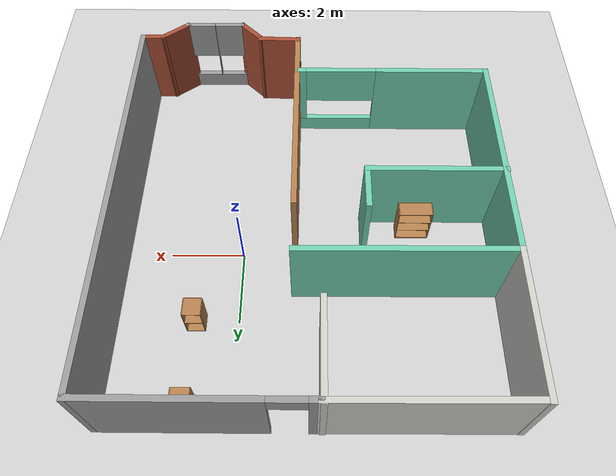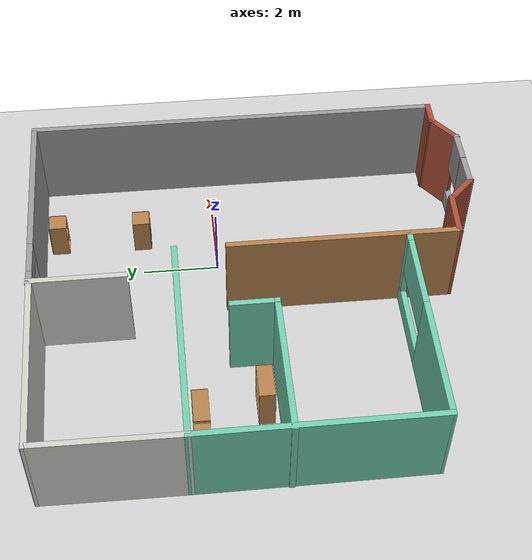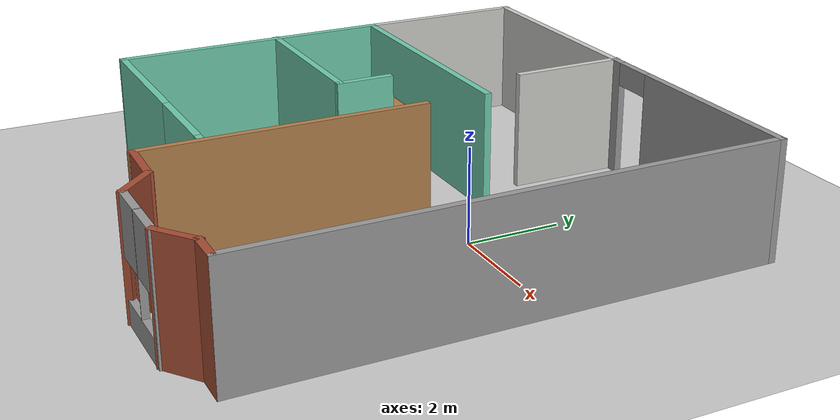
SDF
<sdf version="1.6">
 <world name="default">
  <model name="ground_plane">
   <static>1</static>
   <link name="link">
    <collision name="collision">
     <geometry><plane><normal>0 0 1</normal><size>100 100</size></plane></geometry>
     <surface><friction><ode><mu>100</mu><mu2>50</mu2></ode></friction></surface>
    </collision>
    <visual name="visual">
     <cast_shadows>0</cast_shadows>
     <geometry><plane><normal>0 0 1</normal><size>100 100</size></plane></geometry>
     <material>
      <script><uri>file://media/materials/scripts/gazebo.material</uri><name>Gazebo/Grey</name></script>
     </material>
    </visual>
   </link>
  </model>
  <model name="myWorld">
   <pose>-1.83586 -0.99456 0 0 -0 0</pose>
   <link name="Wall_1">
    <collision name="Wall_1_Collision">
     <geometry><box><size>6 0.15 2.5</size></box></geometry>
     <pose>0 0 1.25 0 -0 0</pose>
    </collision>
    <visual name="Wall_1_Visual">
     <pose>0 0 1.25 0 -0 0</pose>
     <geometry><box><size>6 0.15 2.5</size></box></geometry>
     <material>
      <script><uri>file://media/materials/scripts/gazebo.material</uri><name>Gazebo/Wood</name></script>
      <ambient>1 1 1 1</ambient>
     </material>
     <meta><layer>0</layer></meta>
    </visual>
    <pose>0.408173 -2.14572 0 0 0 -1.5708</pose>
   </link>
   <link name="Wall_18">
    <collision name="Wall_18_Collision">
     <geometry><box><size>10.9886 0.15 2.5</size></box></geometry>
     <pose>0 0 1.25 0 -0 0</pose>
    </collision>
    <visual name="Wall_18_Visual">
     <pose>0 0 1.25 0 -0 0</pose>
     <geometry><box><size>10.9886 0.15 2.5</size></box></geometry>
     <material>
      <script><uri>file://media/materials/scripts/gazebo.material</uri><name>Gazebo/Grey</name></script>
      <ambient>1 1 1 1</ambient>
     </material>
     <meta><layer>0</layer></meta>
    </visual>
    <pose>5.07141 0.284616 0 0 -0 1.5708</pose>
   </link>
   <link name="Wall_2">
    <collision name="Wall_2_Collision">
     <geometry><box><size>1.25 0.15 2.5</size></box></geometry>
     <pose>0 0 1.25 0 -0 0</pose>
    </collision>
    <visual name="Wall_2_Visual">
     <pose>0 0 1.25 0 -0 0</pose>
     <geometry><box><size>1.25 0.15 2.5</size></box></geometry>
     <material>
      <script><uri>file://media/materials/scripts/gazebo.material</uri><name>Gazebo/Bricks</name></script>
      <ambient>1 1 1 1</ambient>
     </material>
     <meta><layer>0</layer></meta>
    </visual>
    <pose>0.958173 -5.07072 0 0 0 -0.031789</pose>
   </link>
   <link name="Wall_20">
    <pose>2.39641 5.7039 0 0 -0 3.14159</pose>
    <visual name="Wall_20_Visual_0">
     <pose>-0.620935 0 1.25 0 -0 0</pose>
     <geometry><box><size>4.25813 0.15 2.5</size></box></geometry>
     <material>
      <script><uri>file://media/materials/scripts/gazebo.material</uri><name>Gazebo/Grey</name></script>
      <ambient>1 1 1 1</ambient>
     </material>
     <meta><layer>0</layer></meta>
    </visual>
    <collision name="Wall_20_Collision_0">
     <geometry><box><size>4.25813 0.15 2.5</size></box></geometry>
     <pose>-0.620935 0 1.25 0 -0 0</pose>
    </collision>
    <visual name="Wall_20_Visual_1">
     <pose>2.57906 0 1.25 0 -0 0</pose>
     <geometry><box><size>0.341869 0.15 2.5</size></box></geometry>
     <material>
      <script><uri>file://media/materials/scripts/gazebo.material</uri><name>Gazebo/Grey</name></script>
      <ambient>1 1 1 1</ambient>
     </material>
     <meta><layer>0</layer></meta>
    </visual>
    <collision name="Wall_20_Collision_1">
     <geometry><box><size>0.341869 0.15 2.5</size></box></geometry>
     <pose>2.57906 0 1.25 0 -0 0</pose>
    </collision>
    <visual name="Wall_20_Visual_2">
     <pose>1.95813 0 2.25 0 -0 0</pose>
     <geometry><box><size>0.9 0.15 0.5</size></box></geometry>
     <material>
      <script><uri>file://media/materials/scripts/gazebo.material</uri><name>Gazebo/Grey</name></script>
      <ambient>1 1 1 1</ambient>
     </material>
     <meta><layer>0</layer></meta>
    </visual>
    <collision name="Wall_20_Collision_2">
     <geometry><box><size>0.9 0.15 0.5</size></box></geometry>
     <pose>1.95813 0 2.25 0 -0 0</pose>
    </collision>
   </link>
   <link name="Wall_22">
    <collision name="Wall_22_Collision">
     <geometry><box><size>4.8978 0.15 2.5</size></box></geometry>
     <pose>0 0 1.25 0 -0 0</pose>
    </collision>
    <visual name="Wall_22_Visual">
     <pose>0 0 1.25 0 -0 0</pose>
     <geometry><box><size>4.8978 0.15 2.5</size></box></geometry>
     <material>
      <script><uri>file://media/materials/scripts/gazebo.material</uri><name>Gazebo/CeilingTiled</name></script>
      <ambient>1 1 1 1</ambient>
     </material>
     <meta><layer>0</layer></meta>
    </visual>
    <pose>-2.6523 5.68869 0 0 0 -3.13519</pose>
   </link>
   <link name="Wall_23">
    <collision name="Wall_23_Collision">
     <geometry><box><size>3.72179 0.15 2.5</size></box></geometry>
     <pose>0 0 1.25 0 -0 0</pose>
    </collision>
    <visual name="Wall_23_Visual">
     <pose>0 0 1.25 0 -0 0</pose>
     <geometry><box><size>3.72179 0.15 2.5</size></box></geometry>
     <material>
      <script><uri>file://media/materials/scripts/gazebo.material</uri><name>Gazebo/CeilingTiled</name></script>
      <ambient>1 1 1 1</ambient>
     </material>
     <meta><layer>0</layer></meta>
    </visual>
    <pose>-5.03927 3.90281 0 0 0 -1.57822</pose>
   </link>
   <link name="Wall_24">
    <collision name="Wall_24_Collision">
     <geometry><box><size>5.59881 0.15 2.5</size></box></geometry>
     <pose>0 0 1.25 0 -0 0</pose>
    </collision>
    <visual name="Wall_24_Visual">
     <pose>0 0 1.25 0 -0 0</pose>
     <geometry><box><size>5.59881 0.15 2.5</size></box></geometry>
     <material>
      <script><uri>file://media/materials/scripts/gazebo.material</uri><name>Gazebo/Grey</name></script>
      <ambient>0.435294 0.796078 0.67451 1</ambient>
     </material>
     <meta><layer>0</layer></meta>
    </visual>
    <pose>-2.31491 2.12703 0 0 -0 0.003711</pose>
   </link>
   <link name="Wall_26">
    <collision name="Wall_26_Collision">
     <geometry><box><size>2.5 0.15 2.5</size></box></geometry>
     <pose>0 0 1.25 0 -0 0</pose>
    </collision>
    <visual name="Wall_26_Visual">
     <pose>0 0 1.25 0 -0 0</pose>
     <geometry><box><size>2.5 0.15 2.5</size></box></geometry>
     <material>
      <script><uri>file://media/materials/scripts/gazebo.material</uri><name>Gazebo/CeilingTiled</name></script>
      <ambient>1 1 1 1</ambient>
     </material>
     <meta><layer>0</layer></meta>
    </visual>
    <pose>-0.330965 4.55103 0 0 -0 1.5708</pose>
   </link>
   <link name="Wall_28">
    <collision name="Wall_28_Collision">
     <geometry><box><size>6.04346 0.15 2.5</size></box></geometry>
     <pose>0 0 1.25 0 -0 0</pose>
    </collision>
    <visual name="Wall_28_Visual">
     <pose>0 0 1.25 0 -0 0</pose>
     <geometry><box><size>6.04346 0.15 2.5</size></box></geometry>
     <material>
      <script><uri>file://media/materials/scripts/gazebo.material</uri><name>Gazebo/Grey</name></script>
      <ambient>0.435294 0.796078 0.67451 1</ambient>
     </material>
     <meta><layer>0</layer></meta>
    </visual>
    <pose>-5.03927 -0.829799 0 0 0 -1.5663</pose>
   </link>
   <link name="Wall_29">
    <pose>-2.35101 -3.77652 0 0 -0 0</pose>
    <visual name="Wall_29_Visual_0">
     <pose>-1.12879 0 1.25 0 -0 0</pose>
     <geometry><box><size>3.24243 0.15 2.5</size></box></geometry>
     <material>
      <script><uri>file://media/materials/scripts/gazebo.material</uri><name>Gazebo/Grey</name></script>
      <ambient>0.435294 0.796078 0.67451 1</ambient>
     </material>
     <meta><layer>0</layer></meta>
    </visual>
    <collision name="Wall_29_Collision_0">
     <geometry><box><size>3.24243 0.15 2.5</size></box></geometry>
     <pose>-1.12879 0 1.25 0 -0 0</pose>
    </collision>
    <visual name="Wall_29_Visual_1">
     <pose>1.62121 0 0.25 0 -0 0</pose>
     <geometry><box><size>2.25757 0.15 0.5</size></box></geometry>
     <material>
      <script><uri>file://media/materials/scripts/gazebo.material</uri><name>Gazebo/Grey</name></script>
      <ambient>0.435294 0.796078 0.67451 1</ambient>
     </material>
     <meta><layer>0</layer></meta>
    </visual>
    <collision name="Wall_29_Collision_1">
     <geometry><box><size>2.25757 0.15 0.5</size></box></geometry>
     <pose>1.62121 0 0.25 0 -0 0</pose>
    </collision>
    <visual name="Wall_29_Visual_2">
     <pose>2.62121 0 1.5 0 -0 0</pose>
     <geometry><box><size>0.257574 0.15 2</size></box></geometry>
     <material>
      <script><uri>file://media/materials/scripts/gazebo.material</uri><name>Gazebo/Grey</name></script>
      <ambient>0.435294 0.796078 0.67451 1</ambient>
     </material>
     <meta><layer>0</layer></meta>
    </visual>
    <collision name="Wall_29_Collision_2">
     <geometry><box><size>0.257574 0.15 2</size></box></geometry>
     <pose>2.62121 0 1.5 0 -0 0</pose>
    </collision>
    <visual name="Wall_29_Visual_3">
     <pose>1.49243 0 1.9 0 -0 0</pose>
     <geometry><box><size>2 0.15 1.2</size></box></geometry>
     <material>
      <script><uri>file://media/materials/scripts/gazebo.material</uri><name>Gazebo/Grey</name></script>
      <ambient>0.435294 0.796078 0.67451 1</ambient>
     </material>
     <meta><layer>0</layer></meta>
    </visual>
    <collision name="Wall_29_Collision_3">
     <geometry><box><size>2 0.15 1.2</size></box></geometry>
     <pose>1.49243 0 1.9 0 -0 0</pose>
    </collision>
   </link>
   <link name="Wall_3">
    <collision name="Wall_3_Collision">
     <geometry><box><size>1 0.15 2.5</size></box></geometry>
     <pose>0 0 1.25 0 -0 0</pose>
    </collision>
    <visual name="Wall_3_Visual">
     <pose>0 0 1.25 0 -0 0</pose>
     <geometry><box><size>1 0.15 2.5</size></box></geometry>
     <material>
      <script><uri>file://media/materials/scripts/gazebo.material</uri><name>Gazebo/Bricks</name></script>
      <ambient>1 1 1 1</ambient>
     </material>
     <meta><layer>0</layer></meta>
    </visual>
    <pose>1.80298 -5.39445 0 0 0 -0.785398</pose>
   </link>
   <link name="Wall_31">
    <collision name="Wall_31_Collision">
     <geometry><box><size>3.75 0.15 2.5</size></box></geometry>
     <pose>0 0 1.25 0 -0 0</pose>
    </collision>
    <visual name="Wall_31_Visual">
     <pose>0 0 1.25 0 -0 0</pose>
     <geometry><box><size>3.75 0.15 2.5</size></box></geometry>
     <material>
      <script><uri>file://media/materials/scripts/gazebo.material</uri><name>Gazebo/Grey</name></script>
      <ambient>0.435294 0.796078 0.67451 1</ambient>
     </material>
     <meta><layer>0</layer></meta>
    </visual>
    <pose>-3.27141 -0.245758 0 0 -0 0</pose>
   </link>
   <link name="Wall_32">
    <collision name="Wall_32_Collision">
     <geometry><box><size>1.25 0.15 2.5</size></box></geometry>
     <pose>0 0 1.25 0 -0 0</pose>
    </collision>
    <visual name="Wall_32_Visual">
     <pose>0 0 1.25 0 -0 0</pose>
     <geometry><box><size>1.25 0.15 2.5</size></box></geometry>
     <material>
      <script><uri>file://media/materials/scripts/gazebo.material</uri><name>Gazebo/Grey</name></script>
      <ambient>0.435294 0.796078 0.67451 1</ambient>
     </material>
     <meta><layer>0</layer></meta>
    </visual>
    <pose>-1.47141 0.304242 0 0 -0 1.5708</pose>
   </link>
   <link name="Wall_4">
    <pose>2.9426 -5.68332 0 0 -0 0.00712</pose>
    <visual name="Wall_4_Visual_0">
     <pose>-0.858752 0 1.25 0 -0 0</pose>
     <geometry><box><size>0.099322 0.15 2.5</size></box></geometry>
     <material>
      <script><uri>file://media/materials/scripts/gazebo.material</uri><name>Gazebo/Grey</name></script>
      <ambient>1 1 1 1</ambient>
     </material>
     <meta><layer>0</layer></meta>
    </visual>
    <collision name="Wall_4_Collision_0">
     <geometry><box><size>0.099322 0.15 2.5</size></box></geometry>
     <pose>-0.858752 0 1.25 0 -0 0</pose>
    </collision>
    <visual name="Wall_4_Visual_1">
     <pose>0.049661 0 0.25 0 -0 0</pose>
     <geometry><box><size>1.7175 0.15 0.5</size></box></geometry>
     <material>
      <script><uri>file://media/materials/scripts/gazebo.material</uri><name>Gazebo/Grey</name></script>
      <ambient>1 1 1 1</ambient>
     </material>
     <meta><layer>0</layer></meta>
    </visual>
    <collision name="Wall_4_Collision_1">
     <geometry><box><size>1.7175 0.15 0.5</size></box></geometry>
     <pose>0.049661 0 0.25 0 -0 0</pose>
    </collision>
    <visual name="Wall_4_Visual_2">
     <pose>0.000934 0 1.5 0 -0 0</pose>
     <geometry><box><size>0.02005 0.15 2</size></box></geometry>
     <material>
      <script><uri>file://media/materials/scripts/gazebo.material</uri><name>Gazebo/Grey</name></script>
      <ambient>1 1 1 1</ambient>
     </material>
     <meta><layer>0</layer></meta>
    </visual>
    <collision name="Wall_4_Collision_2">
     <geometry><box><size>0.02005 0.15 2</size></box></geometry>
     <pose>0.000934 0 1.5 0 -0 0</pose>
    </collision>
    <visual name="Wall_4_Visual_3">
     <pose>0.859686 0 1.5 0 -0 0</pose>
     <geometry><box><size>0.097453 0.15 2</size></box></geometry>
     <material>
      <script><uri>file://media/materials/scripts/gazebo.material</uri><name>Gazebo/Grey</name></script>
      <ambient>1 1 1 1</ambient>
     </material>
     <meta><layer>0</layer></meta>
    </visual>
    <collision name="Wall_4_Collision_3">
     <geometry><box><size>0.097453 0.15 2</size></box></geometry>
     <pose>0.859686 0 1.5 0 -0 0</pose>
    </collision>
    <visual name="Wall_4_Visual_4">
     <pose>-0.409091 0 1.9 0 -0 0</pose>
     <geometry><box><size>0.8 0.15 1.2</size></box></geometry>
     <material>
      <script><uri>file://media/materials/scripts/gazebo.material</uri><name>Gazebo/Grey</name></script>
      <ambient>1 1 1 1</ambient>
     </material>
     <meta><layer>0</layer></meta>
    </visual>
    <collision name="Wall_4_Collision_4">
     <geometry><box><size>0.8 0.15 1.2</size></box></geometry>
     <pose>-0.409091 0 1.9 0 -0 0</pose>
    </collision>
    <visual name="Wall_4_Visual_5">
     <pose>0.41096 0 1.9 0 -0 0</pose>
     <geometry><box><size>0.8 0.15 1.2</size></box></geometry>
     <material>
      <script><uri>file://media/materials/scripts/gazebo.material</uri><name>Gazebo/Grey</name></script>
      <ambient>1 1 1 1</ambient>
     </material>
     <meta><layer>0</layer></meta>
    </visual>
    <collision name="Wall_4_Collision_5">
     <geometry><box><size>0.8 0.15 1.2</size></box></geometry>
     <pose>0.41096 0 1.9 0 -0 0</pose>
    </collision>
   </link>
   <link name="Wall_5">
    <collision name="Wall_5_Collision">
     <geometry><box><size>1.02513 0.15 2.5</size></box></geometry>
     <pose>0 0 1.25 0 -0 0</pose>
    </collision>
    <visual name="Wall_5_Visual">
     <pose>0 0 1.25 0 -0 0</pose>
     <geometry><box><size>1.02513 0.15 2.5</size></box></geometry>
     <material>
      <script><uri>file://media/materials/scripts/gazebo.material</uri><name>Gazebo/Bricks</name></script>
      <ambient>1 1 1 1</ambient>
     </material>
     <meta><layer>0</layer></meta>
    </visual>
    <pose>4.1237 -5.40602 0 0 -0 0.652393</pose>
   </link>
   <link name="Wall_6">
    <collision name="Wall_6_Collision">
     <geometry><box><size>0.75 0.15 2.5</size></box></geometry>
     <pose>0 0 1.25 0 -0 0</pose>
    </collision>
    <visual name="Wall_6_Visual">
     <pose>0 0 1.25 0 -0 0</pose>
     <geometry><box><size>0.75 0.15 2.5</size></box></geometry>
     <material>
      <script><uri>file://media/materials/scripts/gazebo.material</uri><name>Gazebo/Bricks</name></script>
      <ambient>1 1 1 1</ambient>
     </material>
     <meta><layer>0</layer></meta>
    </visual>
    <pose>4.7714 -5.14038 0 0 -0 0</pose>
   </link>
   <static>1</static>
  </model>
  <model name="cabinet_clone_0">
   <static>1</static>
   <link name="cabinet_bottom_plate">
    <inertial>
     <pose>0 0 -1 0 -0 0</pose>
     <inertia><ixx>2.05</ixx><ixy>0</ixy><ixz>0</ixz><iyy>2.05</iyy><iyz>0</iyz><izz>2.05</izz></inertia>
     <mass>25</mass>
    </inertial>
    <collision name="cabinet_bottom_plate_geom">
     <pose>0 0 0.01 0 -0 0</pose>
     <geometry><box><size>0.45 0.45 0.02</size></box></geometry>
    </collision>
    <visual name="cabinet_bottom_plate_geom_visual">
     <pose>0 0 0.01 0 -0 0</pose>
     <geometry><box><size>0.45 0.45 0.02</size></box></geometry>
     <material>
      <script><uri>file://media/materials/scripts/gazebo.material</uri><name>Gazebo/Wood</name></script>
     </material>
    </visual>
    <collision name="cabinet_bottom_plate_geom_cabinet_back_plate">
     <pose>0.235 0 0.51 0 -0 0</pose>
     <geometry><box><size>0.02 0.45 1.02</size></box></geometry>
    </collision>
    <visual name="cabinet_bottom_plate_geom_cabinet_back_plate_visual">
     <pose>0.235 0 0.51 0 -0 0</pose>
     <geometry><box><size>0.02 0.45 1.02</size></box></geometry>
     <material>
      <script><uri>file://media/materials/scripts/gazebo.material</uri><name>Gazebo/Wood</name></script>
     </material>
    </visual>
    <collision name="cabinet_bottom_plate_geom_cabinet_left_plate">
     <pose>0 0.235 0.51 0 -0 0</pose>
     <geometry><box><size>0.45 0.02 1.02</size></box></geometry>
    </collision>
    <visual name="cabinet_bottom_plate_geom_cabinet_left_plate_visual">
     <pose>0 0.235 0.51 0 -0 0</pose>
     <geometry><box><size>0.45 0.02 1.02</size></box></geometry>
     <material>
      <script><uri>file://media/materials/scripts/gazebo.material</uri><name>Gazebo/Wood</name></script>
     </material>
    </visual>
    <collision name="cabinet_bottom_plate_geom_cabinet_middle_plate">
     <pose>0 0 0.51 0 -0 0</pose>
     <geometry><box><size>0.45 0.45 0.02</size></box></geometry>
    </collision>
    <visual name="cabinet_bottom_plate_geom_cabinet_middle_plate_visual">
     <pose>0 0 0.51 0 -0 0</pose>
     <geometry><box><size>0.45 0.45 0.02</size></box></geometry>
     <material>
      <script><uri>file://media/materials/scripts/gazebo.material</uri><name>Gazebo/Wood</name></script>
     </material>
    </visual>
    <collision name="cabinet_bottom_plate_geom_cabinet_right_plate">
     <pose>0 -0.235 0.51 0 -0 0</pose>
     <geometry><box><size>0.45 0.02 1.02</size></box></geometry>
    </collision>
    <visual name="cabinet_bottom_plate_geom_cabinet_right_plate_visual">
     <pose>0 -0.235 0.51 0 -0 0</pose>
     <geometry><box><size>0.45 0.02 1.02</size></box></geometry>
     <material>
      <script><uri>file://media/materials/scripts/gazebo.material</uri><name>Gazebo/Wood</name></script>
     </material>
    </visual>
    <collision name="cabinet_bottom_plate_geom_cabinet_top_plate">
     <pose>0 0 1.01 0 -0 0</pose>
     <geometry><box><size>0.45 0.45 0.02</size></box></geometry>
    </collision>
    <visual name="cabinet_bottom_plate_geom_cabinet_top_plate_visual">
     <pose>0 0 1.01 0 -0 0</pose>
     <geometry><box><size>0.45 0.45 0.02</size></box></geometry>
     <material>
      <script><uri>file://media/materials/scripts/gazebo.material</uri><name>Gazebo/Wood</name></script>
     </material>
    </visual>
   </link>
   <pose>1.09244 1.99689 0 0 0 -1.5708</pose>
  </model>
  <model name="cabinet_1_clone_1">
   <static>1</static>
   <link name="cabinet_bottom_plate">
    <inertial>
     <pose>0 0 -1 0 -0 0</pose>
     <inertia><ixx>2.05</ixx><ixy>0</ixy><ixz>0</ixz><iyy>2.05</iyy><iyz>0</iyz><izz>2.05</izz></inertia>
     <mass>25</mass>
    </inertial>
    <collision name="cabinet_bottom_plate_geom">
     <pose>0 0 0.01 0 -0 0</pose>
     <geometry><box><size>0.45 0.45 0.02</size></box></geometry>
    </collision>
    <visual name="cabinet_bottom_plate_geom_visual">
     <pose>0 0 0.01 0 -0 0</pose>
     <geometry><box><size>0.45 0.45 0.02</size></box></geometry>
     <material>
      <script><uri>file://media/materials/scripts/gazebo.material</uri><name>Gazebo/Wood</name></script>
     </material>
    </visual>
    <collision name="cabinet_bottom_plate_geom_cabinet_back_plate">
     <pose>0.235 0 0.51 0 -0 0</pose>
     <geometry><box><size>0.02 0.45 1.02</size></box></geometry>
    </collision>
    <visual name="cabinet_bottom_plate_geom_cabinet_back_plate_visual">
     <pose>0.235 0 0.51 0 -0 0</pose>
     <geometry><box><size>0.02 0.45 1.02</size></box></geometry>
     <material>
      <script><uri>file://media/materials/scripts/gazebo.material</uri><name>Gazebo/Wood</name></script>
     </material>
    </visual>
    <collision name="cabinet_bottom_plate_geom_cabinet_left_plate">
     <pose>0 0.235 0.51 0 -0 0</pose>
     <geometry><box><size>0.45 0.02 1.02</size></box></geometry>
    </collision>
    <visual name="cabinet_bottom_plate_geom_cabinet_left_plate_visual">
     <pose>0 0.235 0.51 0 -0 0</pose>
     <geometry><box><size>0.45 0.02 1.02</size></box></geometry>
     <material>
      <script><uri>file://media/materials/scripts/gazebo.material</uri><name>Gazebo/Wood</name></script>
     </material>
    </visual>
    <collision name="cabinet_bottom_plate_geom_cabinet_middle_plate">
     <pose>0 0 0.51 0 -0 0</pose>
     <geometry><box><size>0.45 0.45 0.02</size></box></geometry>
    </collision>
    <visual name="cabinet_bottom_plate_geom_cabinet_middle_plate_visual">
     <pose>0 0 0.51 0 -0 0</pose>
     <geometry><box><size>0.45 0.45 0.02</size></box></geometry>
     <material>
      <script><uri>file://media/materials/scripts/gazebo.material</uri><name>Gazebo/Wood</name></script>
     </material>
    </visual>
    <collision name="cabinet_bottom_plate_geom_cabinet_right_plate">
     <pose>0 -0.235 0.51 0 -0 0</pose>
     <geometry><box><size>0.45 0.02 1.02</size></box></geometry>
    </collision>
    <visual name="cabinet_bottom_plate_geom_cabinet_right_plate_visual">
     <pose>0 -0.235 0.51 0 -0 0</pose>
     <geometry><box><size>0.45 0.02 1.02</size></box></geometry>
     <material>
      <script><uri>file://media/materials/scripts/gazebo.material</uri><name>Gazebo/Wood</name></script>
     </material>
    </visual>
    <collision name="cabinet_bottom_plate_geom_cabinet_top_plate">
     <pose>0 0 1.01 0 -0 0</pose>
     <geometry><box><size>0.45 0.45 0.02</size></box></geometry>
    </collision>
    <visual name="cabinet_bottom_plate_geom_cabinet_top_plate_visual">
     <pose>0 0 1.01 0 -0 0</pose>
     <geometry><box><size>0.45 0.45 0.02</size></box></geometry>
     <material>
      <script><uri>file://media/materials/scripts/gazebo.material</uri><name>Gazebo/Wood</name></script>
     </material>
    </visual>
   </link>
   <pose>1.13427 4.23255 0 0 -0 1.5708</pose>
  </model>
  <model name="bookshelf">
   <static>1</static>
   <link name="link">
    <inertial><mass>1</mass></inertial>
    <collision name="back">
     <pose>0 0.005 0.6 0 -0 0</pose>
     <geometry><box><size>0.9 0.01 1.2</size></box></geometry>
    </collision>
    <visual name="visual1">
     <pose>0 0.005 0.6 0 -0 0</pose>
     <geometry><box><size>0.9 0.01 1.2</size></box></geometry>
     <material>
      <script><uri>file://media/materials/scripts/gazebo.material</uri><name>Gazebo/Wood</name></script>
     </material>
    </visual>
    <collision name="left_side">
     <pose>0.45 -0.195 0.6 0 -0 0</pose>
     <geometry><box><size>0.02 0.4 1.2</size></box></geometry>
    </collision>
    <visual name="visual2">
     <pose>0.45 -0.195 0.6 0 -0 0</pose>
     <geometry><box><size>0.02 0.4 1.2</size></box></geometry>
     <material>
      <script><uri>file://media/materials/scripts/gazebo.material</uri><name>Gazebo/Wood</name></script>
     </material>
    </visual>
    <collision name="right_side">
     <pose>-0.45 -0.195 0.6 0 -0 0</pose>
     <geometry><box><size>0.02 0.4 1.2</size></box></geometry>
    </collision>
    <visual name="visual3">
     <pose>-0.45 -0.195 0.6 0 -0 0</pose>
     <geometry><box><size>0.02 0.4 1.2</size></box></geometry>
     <material>
      <script><uri>file://media/materials/scripts/gazebo.material</uri><name>Gazebo/Wood</name></script>
     </material>
    </visual>
    <collision name="bottom">
     <pose>0 -0.195 0.03 0 -0 0</pose>
     <geometry><box><size>0.88 0.4 0.06</size></box></geometry>
    </collision>
    <visual name="visual4">
     <pose>0 -0.195 0.03 0 -0 0</pose>
     <geometry><box><size>0.88 0.4 0.06</size></box></geometry>
     <material>
      <script><uri>file://media/materials/scripts/gazebo.material</uri><name>Gazebo/Wood</name></script>
     </material>
    </visual>
    <collision name="top">
     <pose>0 -0.195 1.19 0 -0 0</pose>
     <geometry><box><size>0.88 0.4 0.02</size></box></geometry>
    </collision>
    <visual name="visual5">
     <pose>0 -0.195 1.19 0 -0 0</pose>
     <geometry><box><size>0.88 0.4 0.02</size></box></geometry>
     <material>
      <script><uri>file://media/materials/scripts/gazebo.material</uri><name>Gazebo/Wood</name></script>
     </material>
    </visual>
    <collision name="low_shelf">
     <pose>0 -0.195 0.43 0 -0 0</pose>
     <geometry><box><size>0.88 0.4 0.02</size></box></geometry>
    </collision>
    <visual name="visual6">
     <pose>0 -0.195 0.43 0 -0 0</pose>
     <geometry><box><size>0.88 0.4 0.02</size></box></geometry>
     <material>
      <script><uri>file://media/materials/scripts/gazebo.material</uri><name>Gazebo/Wood</name></script>
     </material>
    </visual>
    <collision name="high_shelf">
     <pose>0 -0.195 0.8 0 -0 0</pose>
     <geometry><box><size>0.88 0.4 0.02</size></box></geometry>
    </collision>
    <visual name="visual7">
     <pose>0 -0.195 0.8 0 -0 0</pose>
     <geometry><box><size>0.88 0.4 0.02</size></box></geometry>
     <material>
      <script><uri>file://media/materials/scripts/gazebo.material</uri><name>Gazebo/Wood</name></script>
     </material>
    </visual>
   </link>
   <pose>-6.22924 0.974511 0 0 -0 0</pose>
  </model>
  <model name="bookshelf_clone">
   <static>1</static>
   <link name="link">
    <inertial><mass>1</mass></inertial>
    <collision name="back">
     <pose>0 0.005 0.6 0 -0 0</pose>
     <geometry><box><size>0.9 0.01 1.2</size></box></geometry>
    </collision>
    <visual name="visual1">
     <pose>0 0.005 0.6 0 -0 0</pose>
     <geometry><box><size>0.9 0.01 1.2</size></box></geometry>
     <material>
      <script><uri>file://media/materials/scripts/gazebo.material</uri><name>Gazebo/Wood</name></script>
     </material>
    </visual>
    <collision name="left_side">
     <pose>0.45 -0.195 0.6 0 -0 0</pose>
     <geometry><box><size>0.02 0.4 1.2</size></box></geometry>
    </collision>
    <visual name="visual2">
     <pose>0.45 -0.195 0.6 0 -0 0</pose>
     <geometry><box><size>0.02 0.4 1.2</size></box></geometry>
     <material>
      <script><uri>file://media/materials/scripts/gazebo.material</uri><name>Gazebo/Wood</name></script>
     </material>
    </visual>
    <collision name="right_side">
     <pose>-0.45 -0.195 0.6 0 -0 0</pose>
     <geometry><box><size>0.02 0.4 1.2</size></box></geometry>
    </collision>
    <visual name="visual3">
     <pose>-0.45 -0.195 0.6 0 -0 0</pose>
     <geometry><box><size>0.02 0.4 1.2</size></box></geometry>
     <material>
      <script><uri>file://media/materials/scripts/gazebo.material</uri><name>Gazebo/Wood</name></script>
     </material>
    </visual>
    <collision name="bottom">
     <pose>0 -0.195 0.03 0 -0 0</pose>
     <geometry><box><size>0.88 0.4 0.06</size></box></geometry>
    </collision>
    <visual name="visual4">
     <pose>0 -0.195 0.03 0 -0 0</pose>
     <geometry><box><size>0.88 0.4 0.06</size></box></geometry>
     <material>
      <script><uri>file://media/materials/scripts/gazebo.material</uri><name>Gazebo/Wood</name></script>
     </material>
    </visual>
    <collision name="top">
     <pose>0 -0.195 1.19 0 -0 0</pose>
     <geometry><box><size>0.88 0.4 0.02</size></box></geometry>
    </collision>
    <visual name="visual5">
     <pose>0 -0.195 1.19 0 -0 0</pose>
     <geometry><box><size>0.88 0.4 0.02</size></box></geometry>
     <material>
      <script><uri>file://media/materials/scripts/gazebo.material</uri><name>Gazebo/Wood</name></script>
     </material>
    </visual>
    <collision name="low_shelf">
     <pose>0 -0.195 0.43 0 -0 0</pose>
     <geometry><box><size>0.88 0.4 0.02</size></box></geometry>
    </collision>
    <visual name="visual6">
     <pose>0 -0.195 0.43 0 -0 0</pose>
     <geometry><box><size>0.88 0.4 0.02</size></box></geometry>
     <material>
      <script><uri>file://media/materials/scripts/gazebo.material</uri><name>Gazebo/Wood</name></script>
     </material>
    </visual>
    <collision name="high_shelf">
     <pose>0 -0.195 0.8 0 -0 0</pose>
     <geometry><box><size>0.88 0.4 0.02</size></box></geometry>
    </collision>
    <visual name="visual7">
     <pose>0 -0.195 0.8 0 -0 0</pose>
     <geometry><box><size>0.88 0.4 0.02</size></box></geometry>
     <material>
      <script><uri>file://media/materials/scripts/gazebo.material</uri><name>Gazebo/Wood</name></script>
     </material>
    </visual>
   </link>
   <pose>-5.27577 0.96741 0 0 -0 0</pose>
  </model>
  <model name="bookshelf_clone_0">
   <static>1</static>
   <link name="link">
    <inertial><mass>1</mass></inertial>
    <collision name="back">
     <pose>0 0.005 0.6 0 -0 0</pose>
     <geometry><box><size>0.9 0.01 1.2</size></box></geometry>
    </collision>
    <visual name="visual1">
     <pose>0 0.005 0.6 0 -0 0</pose>
     <geometry><box><size>0.9 0.01 1.2</size></box></geometry>
     <material>
      <script><uri>file://media/materials/scripts/gazebo.material</uri><name>Gazebo/Wood</name></script>
     </material>
    </visual>
    <collision name="left_side">
     <pose>0.45 -0.195 0.6 0 -0 0</pose>
     <geometry><box><size>0.02 0.4 1.2</size></box></geometry>
    </collision>
    <visual name="visual2">
     <pose>0.45 -0.195 0.6 0 -0 0</pose>
     <geometry><box><size>0.02 0.4 1.2</size></box></geometry>
     <material>
      <script><uri>file://media/materials/scripts/gazebo.material</uri><name>Gazebo/Wood</name></script>
     </material>
    </visual>
    <collision name="right_side">
     <pose>-0.45 -0.195 0.6 0 -0 0</pose>
     <geometry><box><size>0.02 0.4 1.2</size></box></geometry>
    </collision>
    <visual name="visual3">
     <pose>-0.45 -0.195 0.6 0 -0 0</pose>
     <geometry><box><size>0.02 0.4 1.2</size></box></geometry>
     <material>
      <script><uri>file://media/materials/scripts/gazebo.material</uri><name>Gazebo/Wood</name></script>
     </material>
    </visual>
    <collision name="bottom">
     <pose>0 -0.195 0.03 0 -0 0</pose>
     <geometry><box><size>0.88 0.4 0.06</size></box></geometry>
    </collision>
    <visual name="visual4">
     <pose>0 -0.195 0.03 0 -0 0</pose>
     <geometry><box><size>0.88 0.4 0.06</size></box></geometry>
     <material>
      <script><uri>file://media/materials/scripts/gazebo.material</uri><name>Gazebo/Wood</name></script>
     </material>
    </visual>
    <collision name="top">
     <pose>0 -0.195 1.19 0 -0 0</pose>
     <geometry><box><size>0.88 0.4 0.02</size></box></geometry>
    </collision>
    <visual name="visual5">
     <pose>0 -0.195 1.19 0 -0 0</pose>
     <geometry><box><size>0.88 0.4 0.02</size></box></geometry>
     <material>
      <script><uri>file://media/materials/scripts/gazebo.material</uri><name>Gazebo/Wood</name></script>
     </material>
    </visual>
    <collision name="low_shelf">
     <pose>0 -0.195 0.43 0 -0 0</pose>
     <geometry><box><size>0.88 0.4 0.02</size></box></geometry>
    </collision>
    <visual name="visual6">
     <pose>0 -0.195 0.43 0 -0 0</pose>
     <geometry><box><size>0.88 0.4 0.02</size></box></geometry>
     <material>
      <script><uri>file://media/materials/scripts/gazebo.material</uri><name>Gazebo/Wood</name></script>
     </material>
    </visual>
    <collision name="high_shelf">
     <pose>0 -0.195 0.8 0 -0 0</pose>
     <geometry><box><size>0.88 0.4 0.02</size></box></geometry>
    </collision>
    <visual name="visual7">
     <pose>0 -0.195 0.8 0 -0 0</pose>
     <geometry><box><size>0.88 0.4 0.02</size></box></geometry>
     <material>
      <script><uri>file://media/materials/scripts/gazebo.material</uri><name>Gazebo/Wood</name></script>
     </material>
    </visual>
   </link>
   <pose>-4.69872 -1.02648 0 0 0 -3.14159</pose>
  </model>
 </world>
</sdf>
